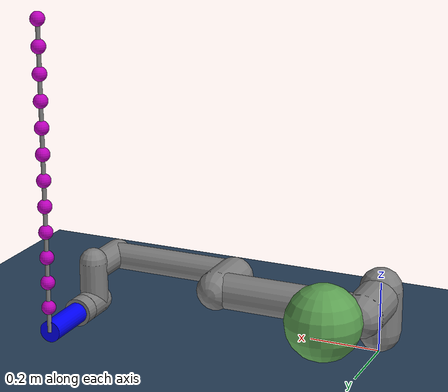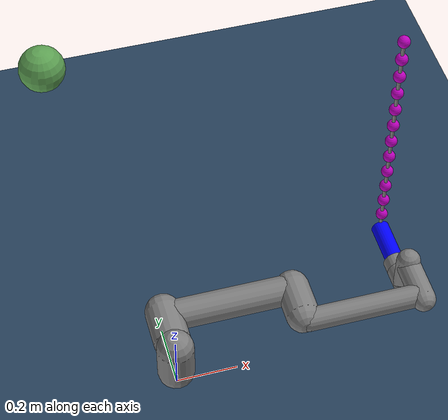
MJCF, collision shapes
<mujoco model="ur5e">
  <compiler angle="radian" meshdir="assets" autolimits="true"/>

  <option integrator="implicitfast"/>
  <option timestep="0.005" gravity="0 0 -9.81" iterations="50"/>

  <visual>
    <map force="0.1" zfar="50"/>
    <rgba haze="0.2 0.3 0.4 1"/>
    <global offwidth="1920" offheight="1080" elevation="-30" azimuth="120"/>
  </visual>

  <statistic center="0 0 1.2" extent="2"/>

  <asset>
    <texture type="skybox" builtin="gradient" rgb1=".4 .6 .8" rgb2="0 0 0" width="32" height="512"/>
    <texture name="grid" type="2d" builtin="checker" width="512" height="512" rgb1=".1 .2 .3" rgb2=".2 .3 .4"/>
    <material name="grid" texture="grid" texrepeat="10 10" texuniform="true" reflectance=".2"/>
    <material name="JointColor" 		 rgba="0.1 0.1 0.1 1" />
    <material name="LimbColor" 		 rgba="0.1 0.1 0.1 1" />
    <material name="pointMassColor" rgba="0.75 0.0 0.75 1" />
		<material name="RefMassColor" 	 rgba="0.2 0.9 0.1 1.0" />
  </asset>

  <default>
    <motor ctrlrange="-1 1" ctrllimited="true"/>
    <joint type="hinge" damping="2.0" stiffness="5" armature="0.01" limited="true" solimplimit="0 .99 .01"/>
  </default>

  <default>
    <default class="ur5e">
      <material specular="0.5" shininess="0.25"/>
      <joint axis="0 1 0" range="-6.28319 6.28319" armature="0.1"/>
      <general gaintype="fixed" biastype="affine" ctrlrange="-6.2831 6.2831" gainprm="2000" biasprm="0 -2000 -400"
        forcerange="-150 150"/>
      <default class="size3">
        <default class="size3_limited">
          <joint range="-3.1415 3.1415"/>
          <general ctrlrange="-3.1415 3.1415"/>
        </default>
      </default>
      <default class="size1">
        <general gainprm="500" biasprm="0 -500 -100" forcerange="-28 28"/>
      </default>
      <default class="visual">
        <geom type="mesh" contype="0" conaffinity="0" group="2"/>
      </default>
      <default class="collision">
        <geom type="capsule" group="3"/>
        <default class="eef_collision">
          <geom type="cylinder"/>
        </default>
      </default>
      <site size="0.001" rgba="0.5 0.5 0.5 0.3" group="4"/>
    </default>

    <default class="whip_ball">
      <joint type="ball" damping="0.00" limited="false"/>
    </default>
  </default>

  <asset>
    <material class="ur5e" name="blue" rgba="0.0 0.0 1 1"/>
    <material class="ur5e" name="black" rgba="0.033 0.033 0.033 1"/>
    <material class="ur5e" name="jointgray" rgba="0.278 0.278 0.278 1"/>
    <material class="ur5e" name="linkgray" rgba="0.82 0.82 0.82 1"/>
    <material class="ur5e" name="urblue" rgba="0.49 0.678 0.8 1"/>

    <mesh file="base_0.obj"/>
    <mesh file="base_1.obj"/>
    <mesh file="shoulder_0.obj"/>
    <mesh file="shoulder_1.obj"/>
    <mesh file="shoulder_2.obj"/>
    <mesh file="upperarm_0.obj"/>
    <mesh file="upperarm_1.obj"/>
    <mesh file="upperarm_2.obj"/>
    <mesh file="upperarm_3.obj"/>
    <mesh file="forearm_0.obj"/>
    <mesh file="forearm_1.obj"/>
    <mesh file="forearm_2.obj"/>
    <mesh file="forearm_3.obj"/>
    <mesh file="wrist1_0.obj"/>
    <mesh file="wrist1_1.obj"/>
    <mesh file="wrist1_2.obj"/>
    <mesh file="wrist2_0.obj"/>
    <mesh file="wrist2_1.obj"/>
    <mesh file="wrist2_2.obj"/>
    <mesh file="wrist3.obj"/>
  </asset>

  <worldbody>
    <geom name="floor" type="plane" material="grid" size="5 5 .1" condim="3"/>
    <light name="top" pos="0 0 4" mode="trackcom" diffuse="0.8 0.8 0.8"/>
    <camera name="fixed" pos="0 -2.3 1" xyaxes="1 0 0 0 0.3 1.2"/>
      <body name="base" quat="1 0 0 0" childclass="ur5e">
      <inertial mass="4.0" pos="0 0 0" diaginertia="0.00443333156 0.00443333156 0.0072"/>
      <geom mesh="base_0" material="black" class="visual"/>
      <geom mesh="base_1" material="jointgray" class="visual"/>
        <body name="shoulder_link" pos="0 0 0.163">
        <inertial mass="3.7" pos="0 0 0" diaginertia="0.0102675 0.0102675 0.00666"/>
        <joint name="shoulder_pan_joint" class="size3" axis="0 0 1"/>
        <geom mesh="shoulder_0" material="urblue" class="visual"/>
        <geom mesh="shoulder_1" material="black" class="visual"/>
        <geom mesh="shoulder_2" material="jointgray" class="visual"/>
        <geom class="collision" size="0.06 0.06" pos="0 0 -0.04"/>
          <body name="upper_arm_link" pos="0 0.138 0" quat="1 0 1 0">
          <inertial mass="8.393" pos="0 0 0.2125" diaginertia="0.133886 0.133886 0.0151074"/>
          <joint name="shoulder_lift_joint" class="size3"/>
          <geom mesh="upperarm_0" material="linkgray" class="visual"/>
          <geom mesh="upperarm_1" material="black" class="visual"/>
          <geom mesh="upperarm_2" material="jointgray" class="visual"/>
          <geom mesh="upperarm_3" material="urblue" class="visual"/>
          <geom class="collision" pos="0 -0.04 0" quat="1 1 0 0" size="0.06 0.06"/>
          <geom class="collision" size="0.05 0.2" pos="0 0 0.2"/>
            <body name="forearm_link" pos="0 -0.131 0.425">
            <inertial mass="2.275" pos="0 0 0.196" diaginertia="0.0311796 0.0311796 0.004095"/>
            <joint name="elbow_joint" class="size3_limited"/>
            <geom mesh="forearm_0" material="urblue" class="visual"/>
            <geom mesh="forearm_1" material="linkgray" class="visual"/>
            <geom mesh="forearm_2" material="black" class="visual"/>
            <geom mesh="forearm_3" material="jointgray" class="visual"/>
            <geom class="collision" pos="0 0.08 0" quat="1 1 0 0" size="0.055 0.06"/>
            <geom class="collision" size="0.038 0.19" pos="0 0 0.2"/>
              <body name="wrist_1_link" pos="0 0 0.392" quat="1 0 1 0">
              <inertial mass="1.219" pos="0 0.127 0" diaginertia="0.0025599 0.0025599 0.0021942"/>
              <joint name="wrist_1_joint" class="size1"/>
              <geom mesh="wrist1_0" material="black" class="visual"/>
              <geom mesh="wrist1_1" material="urblue" class="visual"/>
              <geom mesh="wrist1_2" material="jointgray" class="visual"/>
              <geom class="collision" pos="0 0.05 0" quat="1 1 0 0" size="0.04 0.07"/>
                <body name="wrist_2_link" pos="0 0.127 0">
                <inertial mass="1.219" pos="0 0 0.1" diaginertia="0.0025599 0.0025599 0.0021942"/>
                <joint name="wrist_2_joint" axis="0 0 1" class="size1"/>
                <geom mesh="wrist2_0" material="black" class="visual"/>
                <geom mesh="wrist2_1" material="urblue" class="visual"/>
                <geom mesh="wrist2_2" material="jointgray" class="visual"/>
                <geom class="collision" size="0.04 0.06" pos="0 0 0.04"/>
                <geom class="collision" pos="0 0.02 0.1" quat="1 1 0 0" size="0.04 0.04"/>
                  <body name="wrist_3_link" pos="0 0 0.1">
                  <inertial mass="0.1889" pos="0 0.0771683 0" quat="1 0 0 1"
                    diaginertia="0.000132134 9.90863e-05 9.90863e-05"/>
                  <joint name="wrist_3_joint" class="size1"/>
                  <geom material="linkgray" mesh="wrist3" class="visual"/>
                  <geom class="eef_collision" pos="0 0.08 0" quat="1 1 0 0" size="0.04 0.02"/>
                  <site name="attachment_site" pos="0 0.1 0" quat="-1 1 0 0"/>

                    <!-- Connector cylinder from wrist_3_link to body_whip_node1 -->
                    <geom name="connector_cylinder" type="cylinder" size="0.03 0.075"
                          fromto="0 0.1 0 0 0.25 0" material="blue" />

                    <!-- Start of whip segments -->
                    <body name="body_whip_node1" euler="0 0 0" pos="0 0.25 0">
                      <joint name="joint_whip_node1_X" type="hinge" axis="1  0 0" pos="0 0 0" springref="0" stiffness="0" damping="0" />
                      <joint name="joint_whip_node1_Y" type="hinge" axis="0 -1 0" pos="0 0 0" springref="0" stiffness="0" damping="0" />
                      <geom type="cylinder" fromto="0 0 0 0 0 -0.0720" size="0.0060000" mass="0" />
                      <geom name="geom_whip_node1" type="sphere" material="pointMassColor" pos="0 0 -0.0720" size="0.0200000" mass="0.0120000" />
                      <body name="body_whip_node2" euler="0 0 0" pos="0 0 -0.0720">
                        <joint name="joint_whip_node2_X" type="hinge" axis="1  0 0" pos="0 0 0" springref="0" stiffness="0.242" damping="0.092" />
                        <joint name="joint_whip_node2_Y" type="hinge" axis="0 -1 0" pos="0 0 0" springref="0" stiffness="0.242" damping="0.092" />
                          <geom type="cylinder" fromto="0 0 0 0 0 -0.0720" size="0.0060000" mass="0" />
                          <geom name="geom_whip_node2" type="sphere" material="pointMassColor" pos="0 0 -0.0720" size="0.0200000" mass="0.0120000" />
                          <body name="body_whip_node3" euler="0 0 0" pos="0 0 -0.0720">
                            <joint name="joint_whip_node3_X" type="hinge" axis="1  0 0" pos="0 0 0" springref="0" stiffness="0.242" damping="0.092" />
                            <joint name="joint_whip_node3_Y" type="hinge" axis="0 -1 0" pos="0 0 0" springref="0" stiffness="0.242" damping="0.092" />
                            <geom type="cylinder" fromto="0 0 0 0 0 -0.0720" size="0.0060000" mass="0" />
                            <geom name="geom_whip_node3" type="sphere" material="pointMassColor" pos="0 0 -0.0720" size="0.0200000" mass="0.0120000" />
                            <body name="body_whip_node4" euler="0 0 0" pos="0 0 -0.0720">
                              <joint name="joint_whip_node4_X" type="hinge" axis="1  0 0" pos="0 0 0" springref="0" stiffness="0.242" damping="0.092" />
                              <joint name="joint_whip_node4_Y" type="hinge" axis="0 -1 0" pos="0 0 0" springref="0" stiffness="0.242" damping="0.092" />
                                <geom type="cylinder" fromto="0 0 0 0 0 -0.0720" size="0.0060000" mass="0" />
                                <geom name="geom_whip_node4" type="sphere" material="pointMassColor" pos="0 0 -0.0720" size="0.0200000" mass="0.0120000" />
                                <body name="body_whip_node5" euler="0 0 0" pos="0 0 -0.0720">
                                  <joint name="joint_whip_node5_X" type="hinge" axis="1  0 0" pos="0 0 0" springref="0" stiffness="0.242" damping="0.092" />
                                  <joint name="joint_whip_node5_Y" type="hinge" axis="0 -1 0" pos="0 0 0" springref="0" stiffness="0.242" damping="0.092" />
                                  <geom type="cylinder" fromto="0 0 0 0 0 -0.0720" size="0.0060000" mass="0" />
                                  <geom name="geom_whip_node5" type="sphere" material="pointMassColor" pos="0 0 -0.0720" size="0.0200000" mass="0.0120000" />
                                  <body name="body_whip_node6" euler="0 0 0" pos="0 0 -0.0720">
                                    <joint name="joint_whip_node6_X" type="hinge" axis="1  0 0" pos="0 0 0" springref="0" stiffness="0.242" damping="0.092" />
                                    <joint name="joint_whip_node6_Y" type="hinge" axis="0 -1 0" pos="0 0 0" springref="0" stiffness="0.242" damping="0.092" />
                                      <geom type="cylinder" fromto="0 0 0 0 0 -0.0720" size="0.0060000" mass="0" />
                                      <geom name="geom_whip_node6" type="sphere" material="pointMassColor" pos="0 0 -0.0720" size="0.0200000" mass="0.0120000" />
                                      <body name="body_whip_node7" euler="0 0 0" pos="0 0 -0.0720">
                                        <joint name="joint_whip_node7_X" type="hinge" axis="1  0 0" pos="0 0 0" springref="0" stiffness="0.242" damping="0.092" />
                                        <joint name="joint_whip_node7_Y" type="hinge" axis="0 -1 0" pos="0 0 0" springref="0" stiffness="0.242" damping="0.092" />
                                        <geom type="cylinder" fromto="0 0 0 0 0 -0.0720" size="0.0060000" mass="0" />
                                        <geom name="geom_whip_node7" type="sphere" material="pointMassColor" pos="0 0 -0.0720" size="0.0200000" mass="0.0120000" />
                                        <body name="body_whip_node8" euler="0 0 0" pos="0 0 -0.0720">
                                          <joint name="joint_whip_node8_X" type="hinge" axis="1  0 0" pos="0 0 0" springref="0" stiffness="0.242" damping="0.092" />
                                          <joint name="joint_whip_node8_Y" type="hinge" axis="0 -1 0" pos="0 0 0" springref="0" stiffness="0.242" damping="0.092" />
                                            <geom type="cylinder" fromto="0 0 0 0 0 -0.0720" size="0.0060000" mass="0" />
                                            <geom name="geom_whip_node8" type="sphere" material="pointMassColor" pos="0 0 -0.0720" size="0.0200000" mass="0.0120000" />
                                            <body name="body_whip_node9" euler="0 0 0" pos="0 0 -0.0720">
                                              <joint name="joint_whip_node9_X" type="hinge" axis="1  0 0" pos="0 0 0" springref="0" stiffness="0.242" damping="0.092" />
                                              <joint name="joint_whip_node9_Y" type="hinge" axis="0 -1 0" pos="0 0 0" springref="0" stiffness="0.242" damping="0.092" />
                                              <geom type="cylinder" fromto="0 0 0 0 0 -0.0720" size="0.0060000" mass="0" />
                                              <geom name="geom_whip_node9" type="sphere" material="pointMassColor" pos="0 0 -0.0720" size="0.0200000" mass="0.0120000" />
                                              <body name="body_whip_node10" euler="0 0 0" pos="0 0 -0.0720">
                                                <joint name="joint_whip_node10_X" type="hinge" axis="1  0 0" pos="0 0 0" springref="0" stiffness="0.242" damping="0.092" />
                                                <joint name="joint_whip_node10_Y" type="hinge" axis="0 -1 0" pos="0 0 0" springref="0" stiffness="0.242" damping="0.092" />
                                                  <geom type="cylinder" fromto="0 0 0 0 0 -0.0720" size="0.0060000" mass="0" />
                                                  <geom name="geom_whip_node10" type="sphere" material="pointMassColor" pos="0 0 -0.0720" size="0.0200000" mass="0.0120000" />
                                                  <body name="body_whip_node11" euler="0 0 0" pos="0 0 -0.0720">
                                                    <joint name="joint_whip_node11_X" type="hinge" axis="1  0 0" pos="0 0 0" springref="0" stiffness="0.242" damping="0.092" />
                                                    <joint name="joint_whip_node11_Y" type="hinge" axis="0 -1 0" pos="0 0 0" springref="0" stiffness="0.242" damping="0.092" />
                                                    <geom type="cylinder" fromto="0 0 0 0 0 -0.0720" size="0.0060000" mass="0" />
                                                    <geom name="geom_whip_node11" type="sphere" material="pointMassColor" pos="0 0 -0.0720" size="0.0200000" mass="0.0120000" />
                                                    <body name="body_whip_node12" euler="0 0 0" pos="0 0 -0.0720">
                                                      <joint name="joint_whip_node12_X" type="hinge" axis="1  0 0" pos="0 0 0" springref="0" stiffness="0.242" damping="0.092" />
                                                      <joint name="joint_whip_node12_Y" type="hinge" axis="0 -1 0" pos="0 0 0" springref="0" stiffness="0.242" damping="0.092" />
                                                        <geom type="cylinder" fromto="0 0 0 0 0 -0.0720" size="0.0060000" mass="0" />
                                                        <geom name="geom_whip_node12" type="sphere" material="pointMassColor" pos="0 0 -0.0720" size="0.0200000" mass="0.0120000" />
                                                    </body>
                                                  </body>
                                              </body>
                                            </body>
                                        </body>
                                      </body>
                                  </body>
                                </body>
                            </body>
                          </body>
                      </body>
                    </body>
                    <!-- End of whip segments -->

                  </body>
                </body>
              </body>
            </body>
          </body>
        </body>
      </body>

<geom name="target_ball" type="sphere" pos="-0.2 1 0.5" size="0.08" rgba="0.37 0.64 0.33 1" contype="0" conaffinity="0"/>

  </worldbody>

  <actuator>
    <general class="size3" name="shoulder_pan" joint="shoulder_pan_joint"/>
    <general class="size3" name="shoulder_lift" joint="shoulder_lift_joint"/>
    <general class="size3_limited" name="elbow" joint="elbow_joint"/>
    <general class="size1" name="wrist_1" joint="wrist_1_joint"/>
    <general class="size1" name="wrist_2" joint="wrist_2_joint"/>
    <general class="size1" name="wrist_3" joint="wrist_3_joint"/>
  </actuator>

</mujoco>
